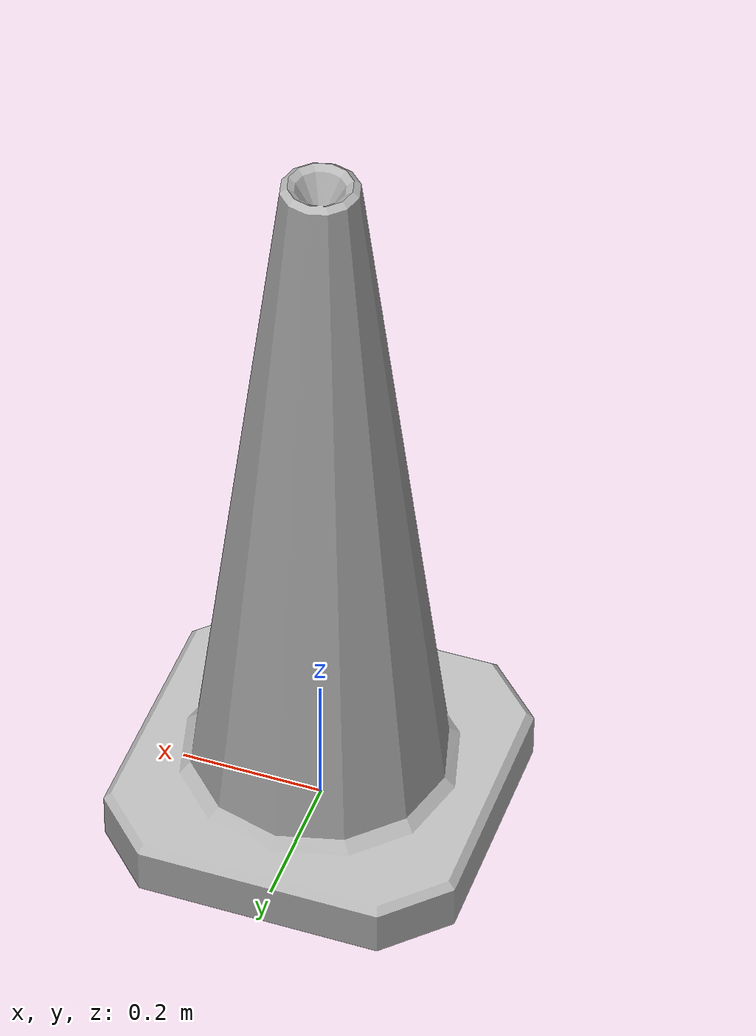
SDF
<?xml version="1.0"?>
<sdf version="1.3">
  <model name="Construction Cone blue">
    <static>true</static>
    <link name="link">
      <collision name="collision">
        <geometry>
          <mesh>
            <scale>10 10 10</scale>
            <uri>model://construction_cone_bule/meshes/construction_cone.dae</uri>
          </mesh>
        </geometry>
      </collision>
      <visual name="visual">
        <geometry>
          <mesh>
            <scale>10 10 10</scale>
            <uri>model://construction_cone_blue/meshes/construction_cone.dae</uri>
          </mesh>
        </geometry>
      </visual>
    </link>
  </model>
</sdf>
